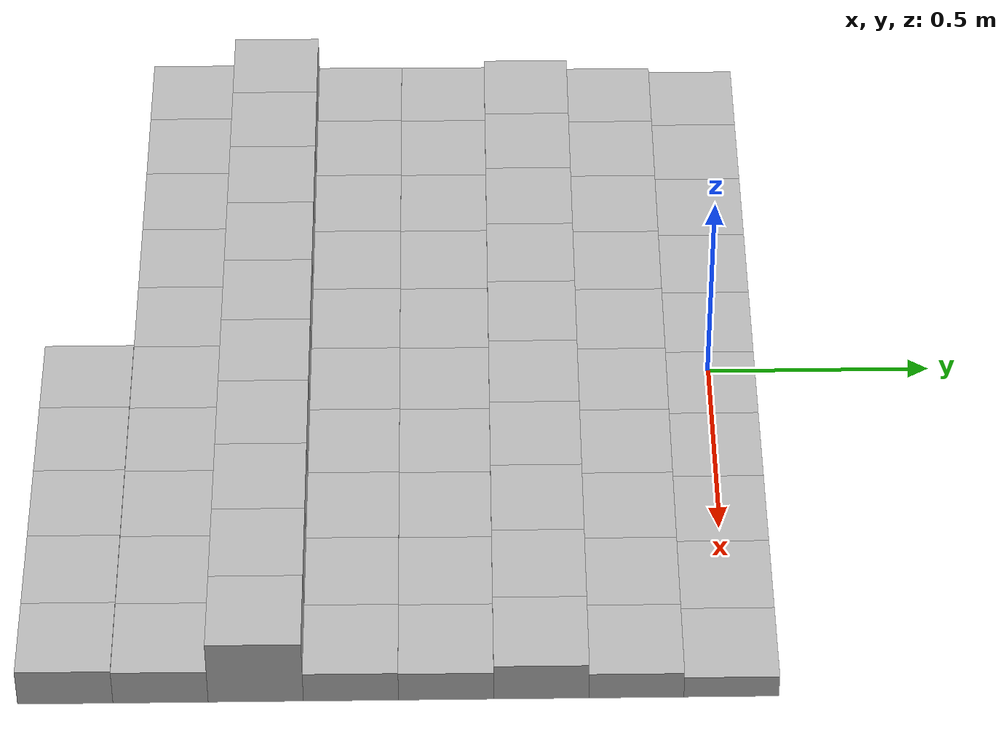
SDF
<sdf version="1.6">
 <model name="Terrain">
  <static>true</static>
  <link name="box_0_0">
   <pose>-0.9 0.0 0.0298454392285 0 0 0</pose>
   <inertial>
    <mass>1.0</mass>
    <inertia><ixx>0.0</ixx><ixy>0.0</ixy><ixz>0.0</ixz><iyy>0.0</iyy><iyz>0.0</iyz><izz>0.0</izz></inertia>
   </inertial>
   <collision name="collision"><geometry><box><size>0.2 0.2 0.0596908784569</size></box></geometry></collision>
   <visual name="visual"><geometry><box><size>0.2 0.2 0.0596908784569</size></box></geometry></visual>
  </link>
  <link name="box_0_1">
   <pose>-0.7 0.0 0.0298454392285 0 0 0</pose>
   <inertial>
    <mass>1.0</mass>
    <inertia><ixx>0.0</ixx><ixy>0.0</ixy><ixz>0.0</ixz><iyy>0.0</iyy><iyz>0.0</iyz><izz>0.0</izz></inertia>
   </inertial>
   <collision name="collision"><geometry><box><size>0.2 0.2 0.0596908784569</size></box></geometry></collision>
   <visual name="visual"><geometry><box><size>0.2 0.2 0.0596908784569</size></box></geometry></visual>
  </link>
  <link name="box_0_2">
   <pose>-0.5 0.0 0.0298454392285 0 0 0</pose>
   <inertial>
    <mass>1.0</mass>
    <inertia><ixx>0.0</ixx><ixy>0.0</ixy><ixz>0.0</ixz><iyy>0.0</iyy><iyz>0.0</iyz><izz>0.0</izz></inertia>
   </inertial>
   <collision name="collision"><geometry><box><size>0.2 0.2 0.0596908784569</size></box></geometry></collision>
   <visual name="visual"><geometry><box><size>0.2 0.2 0.0596908784569</size></box></geometry></visual>
  </link>
  <link name="box_0_3">
   <pose>-0.3 0.0 0.0298454392285 0 0 0</pose>
   <inertial>
    <mass>1.0</mass>
    <inertia><ixx>0.0</ixx><ixy>0.0</ixy><ixz>0.0</ixz><iyy>0.0</iyy><iyz>0.0</iyz><izz>0.0</izz></inertia>
   </inertial>
   <collision name="collision"><geometry><box><size>0.2 0.2 0.0596908784569</size></box></geometry></collision>
   <visual name="visual"><geometry><box><size>0.2 0.2 0.0596908784569</size></box></geometry></visual>
  </link>
  <link name="box_0_4">
   <pose>-0.1 0.0 0.0298454392285 0 0 0</pose>
   <inertial>
    <mass>1.0</mass>
    <inertia><ixx>0.0</ixx><ixy>0.0</ixy><ixz>0.0</ixz><iyy>0.0</iyy><iyz>0.0</iyz><izz>0.0</izz></inertia>
   </inertial>
   <collision name="collision"><geometry><box><size>0.2 0.2 0.0596908784569</size></box></geometry></collision>
   <visual name="visual"><geometry><box><size>0.2 0.2 0.0596908784569</size></box></geometry></visual>
  </link>
  <link name="box_0_5">
   <pose>0.1 0.0 0.0298454392285 0 0 0</pose>
   <inertial>
    <mass>1.0</mass>
    <inertia><ixx>0.0</ixx><ixy>0.0</ixy><ixz>0.0</ixz><iyy>0.0</iyy><iyz>0.0</iyz><izz>0.0</izz></inertia>
   </inertial>
   <collision name="collision"><geometry><box><size>0.2 0.2 0.0596908784569</size></box></geometry></collision>
   <visual name="visual"><geometry><box><size>0.2 0.2 0.0596908784569</size></box></geometry></visual>
  </link>
  <link name="box_0_6">
   <pose>0.3 0.0 0.0298454392285 0 0 0</pose>
   <inertial>
    <mass>1.0</mass>
    <inertia><ixx>0.0</ixx><ixy>0.0</ixy><ixz>0.0</ixz><iyy>0.0</iyy><iyz>0.0</iyz><izz>0.0</izz></inertia>
   </inertial>
   <collision name="collision"><geometry><box><size>0.2 0.2 0.0596908784569</size></box></geometry></collision>
   <visual name="visual"><geometry><box><size>0.2 0.2 0.0596908784569</size></box></geometry></visual>
  </link>
  <link name="box_0_7">
   <pose>0.5 0.0 0.0298454392285 0 0 0</pose>
   <inertial>
    <mass>1.0</mass>
    <inertia><ixx>0.0</ixx><ixy>0.0</ixy><ixz>0.0</ixz><iyy>0.0</iyy><iyz>0.0</iyz><izz>0.0</izz></inertia>
   </inertial>
   <collision name="collision"><geometry><box><size>0.2 0.2 0.0596908784569</size></box></geometry></collision>
   <visual name="visual"><geometry><box><size>0.2 0.2 0.0596908784569</size></box></geometry></visual>
  </link>
  <link name="box_0_8">
   <pose>0.7 0.0 0.0298454392285 0 0 0</pose>
   <inertial>
    <mass>1.0</mass>
    <inertia><ixx>0.0</ixx><ixy>0.0</ixy><ixz>0.0</ixz><iyy>0.0</iyy><iyz>0.0</iyz><izz>0.0</izz></inertia>
   </inertial>
   <collision name="collision"><geometry><box><size>0.2 0.2 0.0596908784569</size></box></geometry></collision>
   <visual name="visual"><geometry><box><size>0.2 0.2 0.0596908784569</size></box></geometry></visual>
  </link>
  <link name="box_0_9">
   <pose>0.9 0.0 0.0298454392285 0 0 0</pose>
   <inertial>
    <mass>1.0</mass>
    <inertia><ixx>0.0</ixx><ixy>0.0</ixy><ixz>0.0</ixz><iyy>0.0</iyy><iyz>0.0</iyz><izz>0.0</izz></inertia>
   </inertial>
   <collision name="collision"><geometry><box><size>0.2 0.2 0.0596908784569</size></box></geometry></collision>
   <visual name="visual"><geometry><box><size>0.2 0.2 0.0596908784569</size></box></geometry></visual>
  </link>
  <link name="box_1_0">
   <pose>-0.9 -0.2 0.0364353297397 0 0 0</pose>
   <inertial>
    <mass>1.0</mass>
    <inertia><ixx>0.0</ixx><ixy>0.0</ixy><ixz>0.0</ixz><iyy>0.0</iyy><iyz>0.0</iyz><izz>0.0</izz></inertia>
   </inertial>
   <collision name="collision"><geometry><box><size>0.2 0.2 0.0728706594794</size></box></geometry></collision>
   <visual name="visual"><geometry><box><size>0.2 0.2 0.0728706594794</size></box></geometry></visual>
  </link>
  <link name="box_1_1">
   <pose>-0.7 -0.2 0.0364353297397 0 0 0</pose>
   <inertial>
    <mass>1.0</mass>
    <inertia><ixx>0.0</ixx><ixy>0.0</ixy><ixz>0.0</ixz><iyy>0.0</iyy><iyz>0.0</iyz><izz>0.0</izz></inertia>
   </inertial>
   <collision name="collision"><geometry><box><size>0.2 0.2 0.0728706594794</size></box></geometry></collision>
   <visual name="visual"><geometry><box><size>0.2 0.2 0.0728706594794</size></box></geometry></visual>
  </link>
  <link name="box_1_2">
   <pose>-0.5 -0.2 0.0364353297397 0 0 0</pose>
   <inertial>
    <mass>1.0</mass>
    <inertia><ixx>0.0</ixx><ixy>0.0</ixy><ixz>0.0</ixz><iyy>0.0</iyy><iyz>0.0</iyz><izz>0.0</izz></inertia>
   </inertial>
   <collision name="collision"><geometry><box><size>0.2 0.2 0.0728706594794</size></box></geometry></collision>
   <visual name="visual"><geometry><box><size>0.2 0.2 0.0728706594794</size></box></geometry></visual>
  </link>
  <link name="box_1_3">
   <pose>-0.3 -0.2 0.0364353297397 0 0 0</pose>
   <inertial>
    <mass>1.0</mass>
    <inertia><ixx>0.0</ixx><ixy>0.0</ixy><ixz>0.0</ixz><iyy>0.0</iyy><iyz>0.0</iyz><izz>0.0</izz></inertia>
   </inertial>
   <collision name="collision"><geometry><box><size>0.2 0.2 0.0728706594794</size></box></geometry></collision>
   <visual name="visual"><geometry><box><size>0.2 0.2 0.0728706594794</size></box></geometry></visual>
  </link>
  <link name="box_1_4">
   <pose>-0.1 -0.2 0.0364353297397 0 0 0</pose>
   <inertial>
    <mass>1.0</mass>
    <inertia><ixx>0.0</ixx><ixy>0.0</ixy><ixz>0.0</ixz><iyy>0.0</iyy><iyz>0.0</iyz><izz>0.0</izz></inertia>
   </inertial>
   <collision name="collision"><geometry><box><size>0.2 0.2 0.0728706594794</size></box></geometry></collision>
   <visual name="visual"><geometry><box><size>0.2 0.2 0.0728706594794</size></box></geometry></visual>
  </link>
  <link name="box_1_5">
   <pose>0.1 -0.2 0.0364353297397 0 0 0</pose>
   <inertial>
    <mass>1.0</mass>
    <inertia><ixx>0.0</ixx><ixy>0.0</ixy><ixz>0.0</ixz><iyy>0.0</iyy><iyz>0.0</iyz><izz>0.0</izz></inertia>
   </inertial>
   <collision name="collision"><geometry><box><size>0.2 0.2 0.0728706594794</size></box></geometry></collision>
   <visual name="visual"><geometry><box><size>0.2 0.2 0.0728706594794</size></box></geometry></visual>
  </link>
  <link name="box_1_6">
   <pose>0.3 -0.2 0.0364353297397 0 0 0</pose>
   <inertial>
    <mass>1.0</mass>
    <inertia><ixx>0.0</ixx><ixy>0.0</ixy><ixz>0.0</ixz><iyy>0.0</iyy><iyz>0.0</iyz><izz>0.0</izz></inertia>
   </inertial>
   <collision name="collision"><geometry><box><size>0.2 0.2 0.0728706594794</size></box></geometry></collision>
   <visual name="visual"><geometry><box><size>0.2 0.2 0.0728706594794</size></box></geometry></visual>
  </link>
  <link name="box_1_7">
   <pose>0.5 -0.2 0.0364353297397 0 0 0</pose>
   <inertial>
    <mass>1.0</mass>
    <inertia><ixx>0.0</ixx><ixy>0.0</ixy><ixz>0.0</ixz><iyy>0.0</iyy><iyz>0.0</iyz><izz>0.0</izz></inertia>
   </inertial>
   <collision name="collision"><geometry><box><size>0.2 0.2 0.0728706594794</size></box></geometry></collision>
   <visual name="visual"><geometry><box><size>0.2 0.2 0.0728706594794</size></box></geometry></visual>
  </link>
  <link name="box_1_8">
   <pose>0.7 -0.2 0.0364353297397 0 0 0</pose>
   <inertial>
    <mass>1.0</mass>
    <inertia><ixx>0.0</ixx><ixy>0.0</ixy><ixz>0.0</ixz><iyy>0.0</iyy><iyz>0.0</iyz><izz>0.0</izz></inertia>
   </inertial>
   <collision name="collision"><geometry><box><size>0.2 0.2 0.0728706594794</size></box></geometry></collision>
   <visual name="visual"><geometry><box><size>0.2 0.2 0.0728706594794</size></box></geometry></visual>
  </link>
  <link name="box_1_9">
   <pose>0.9 -0.2 0.0364353297397 0 0 0</pose>
   <inertial>
    <mass>1.0</mass>
    <inertia><ixx>0.0</ixx><ixy>0.0</ixy><ixz>0.0</ixz><iyy>0.0</iyy><iyz>0.0</iyz><izz>0.0</izz></inertia>
   </inertial>
   <collision name="collision"><geometry><box><size>0.2 0.2 0.0728706594794</size></box></geometry></collision>
   <visual name="visual"><geometry><box><size>0.2 0.2 0.0728706594794</size></box></geometry></visual>
  </link>
  <link name="box_2_0">
   <pose>-0.9 -0.4 0.0500971136277 0 0 0</pose>
   <inertial>
    <mass>1.0</mass>
    <inertia><ixx>0.0</ixx><ixy>0.0</ixy><ixz>0.0</ixz><iyy>0.0</iyy><iyz>0.0</iyz><izz>0.0</izz></inertia>
   </inertial>
   <collision name="collision"><geometry><box><size>0.2 0.2 0.100194227255</size></box></geometry></collision>
   <visual name="visual"><geometry><box><size>0.2 0.2 0.100194227255</size></box></geometry></visual>
  </link>
  <link name="box_2_1">
   <pose>-0.7 -0.4 0.0500971136277 0 0 0</pose>
   <inertial>
    <mass>1.0</mass>
    <inertia><ixx>0.0</ixx><ixy>0.0</ixy><ixz>0.0</ixz><iyy>0.0</iyy><iyz>0.0</iyz><izz>0.0</izz></inertia>
   </inertial>
   <collision name="collision"><geometry><box><size>0.2 0.2 0.100194227255</size></box></geometry></collision>
   <visual name="visual"><geometry><box><size>0.2 0.2 0.100194227255</size></box></geometry></visual>
  </link>
  <link name="box_2_2">
   <pose>-0.5 -0.4 0.0500971136277 0 0 0</pose>
   <inertial>
    <mass>1.0</mass>
    <inertia><ixx>0.0</ixx><ixy>0.0</ixy><ixz>0.0</ixz><iyy>0.0</iyy><iyz>0.0</iyz><izz>0.0</izz></inertia>
   </inertial>
   <collision name="collision"><geometry><box><size>0.2 0.2 0.100194227255</size></box></geometry></collision>
   <visual name="visual"><geometry><box><size>0.2 0.2 0.100194227255</size></box></geometry></visual>
  </link>
  <link name="box_2_3">
   <pose>-0.3 -0.4 0.0500971136277 0 0 0</pose>
   <inertial>
    <mass>1.0</mass>
    <inertia><ixx>0.0</ixx><ixy>0.0</ixy><ixz>0.0</ixz><iyy>0.0</iyy><iyz>0.0</iyz><izz>0.0</izz></inertia>
   </inertial>
   <collision name="collision"><geometry><box><size>0.2 0.2 0.100194227255</size></box></geometry></collision>
   <visual name="visual"><geometry><box><size>0.2 0.2 0.100194227255</size></box></geometry></visual>
  </link>
  <link name="box_2_4">
   <pose>-0.1 -0.4 0.0500971136277 0 0 0</pose>
   <inertial>
    <mass>1.0</mass>
    <inertia><ixx>0.0</ixx><ixy>0.0</ixy><ixz>0.0</ixz><iyy>0.0</iyy><iyz>0.0</iyz><izz>0.0</izz></inertia>
   </inertial>
   <collision name="collision"><geometry><box><size>0.2 0.2 0.100194227255</size></box></geometry></collision>
   <visual name="visual"><geometry><box><size>0.2 0.2 0.100194227255</size></box></geometry></visual>
  </link>
  <link name="box_2_5">
   <pose>0.1 -0.4 0.0500971136277 0 0 0</pose>
   <inertial>
    <mass>1.0</mass>
    <inertia><ixx>0.0</ixx><ixy>0.0</ixy><ixz>0.0</ixz><iyy>0.0</iyy><iyz>0.0</iyz><izz>0.0</izz></inertia>
   </inertial>
   <collision name="collision"><geometry><box><size>0.2 0.2 0.100194227255</size></box></geometry></collision>
   <visual name="visual"><geometry><box><size>0.2 0.2 0.100194227255</size></box></geometry></visual>
  </link>
  <link name="box_2_6">
   <pose>0.3 -0.4 0.0500971136277 0 0 0</pose>
   <inertial>
    <mass>1.0</mass>
    <inertia><ixx>0.0</ixx><ixy>0.0</ixy><ixz>0.0</ixz><iyy>0.0</iyy><iyz>0.0</iyz><izz>0.0</izz></inertia>
   </inertial>
   <collision name="collision"><geometry><box><size>0.2 0.2 0.100194227255</size></box></geometry></collision>
   <visual name="visual"><geometry><box><size>0.2 0.2 0.100194227255</size></box></geometry></visual>
  </link>
  <link name="box_2_7">
   <pose>0.5 -0.4 0.0500971136277 0 0 0</pose>
   <inertial>
    <mass>1.0</mass>
    <inertia><ixx>0.0</ixx><ixy>0.0</ixy><ixz>0.0</ixz><iyy>0.0</iyy><iyz>0.0</iyz><izz>0.0</izz></inertia>
   </inertial>
   <collision name="collision"><geometry><box><size>0.2 0.2 0.100194227255</size></box></geometry></collision>
   <visual name="visual"><geometry><box><size>0.2 0.2 0.100194227255</size></box></geometry></visual>
  </link>
  <link name="box_2_8">
   <pose>0.7 -0.4 0.0500971136277 0 0 0</pose>
   <inertial>
    <mass>1.0</mass>
    <inertia><ixx>0.0</ixx><ixy>0.0</ixy><ixz>0.0</ixz><iyy>0.0</iyy><iyz>0.0</iyz><izz>0.0</izz></inertia>
   </inertial>
   <collision name="collision"><geometry><box><size>0.2 0.2 0.100194227255</size></box></geometry></collision>
   <visual name="visual"><geometry><box><size>0.2 0.2 0.100194227255</size></box></geometry></visual>
  </link>
  <link name="box_2_9">
   <pose>0.9 -0.4 0.0500971136277 0 0 0</pose>
   <inertial>
    <mass>1.0</mass>
    <inertia><ixx>0.0</ixx><ixy>0.0</ixy><ixz>0.0</ixz><iyy>0.0</iyy><iyz>0.0</iyz><izz>0.0</izz></inertia>
   </inertial>
   <collision name="collision"><geometry><box><size>0.2 0.2 0.100194227255</size></box></geometry></collision>
   <visual name="visual"><geometry><box><size>0.2 0.2 0.100194227255</size></box></geometry></visual>
  </link>
  <link name="box_3_0">
   <pose>-0.9 -0.6 0.0400606316075 0 0 0</pose>
   <inertial>
    <mass>1.0</mass>
    <inertia><ixx>0.0</ixx><ixy>0.0</ixy><ixz>0.0</ixz><iyy>0.0</iyy><iyz>0.0</iyz><izz>0.0</izz></inertia>
   </inertial>
   <collision name="collision"><geometry><box><size>0.2 0.2 0.080121263215</size></box></geometry></collision>
   <visual name="visual"><geometry><box><size>0.2 0.2 0.080121263215</size></box></geometry></visual>
  </link>
  <link name="box_3_1">
   <pose>-0.7 -0.6 0.0400606316075 0 0 0</pose>
   <inertial>
    <mass>1.0</mass>
    <inertia><ixx>0.0</ixx><ixy>0.0</ixy><ixz>0.0</ixz><iyy>0.0</iyy><iyz>0.0</iyz><izz>0.0</izz></inertia>
   </inertial>
   <collision name="collision"><geometry><box><size>0.2 0.2 0.080121263215</size></box></geometry></collision>
   <visual name="visual"><geometry><box><size>0.2 0.2 0.080121263215</size></box></geometry></visual>
  </link>
  <link name="box_3_2">
   <pose>-0.5 -0.6 0.0400606316075 0 0 0</pose>
   <inertial>
    <mass>1.0</mass>
    <inertia><ixx>0.0</ixx><ixy>0.0</ixy><ixz>0.0</ixz><iyy>0.0</iyy><iyz>0.0</iyz><izz>0.0</izz></inertia>
   </inertial>
   <collision name="collision"><geometry><box><size>0.2 0.2 0.080121263215</size></box></geometry></collision>
   <visual name="visual"><geometry><box><size>0.2 0.2 0.080121263215</size></box></geometry></visual>
  </link>
  <link name="box_3_3">
   <pose>-0.3 -0.6 0.0400606316075 0 0 0</pose>
   <inertial>
    <mass>1.0</mass>
    <inertia><ixx>0.0</ixx><ixy>0.0</ixy><ixz>0.0</ixz><iyy>0.0</iyy><iyz>0.0</iyz><izz>0.0</izz></inertia>
   </inertial>
   <collision name="collision"><geometry><box><size>0.2 0.2 0.080121263215</size></box></geometry></collision>
   <visual name="visual"><geometry><box><size>0.2 0.2 0.080121263215</size></box></geometry></visual>
  </link>
  <link name="box_3_4">
   <pose>-0.1 -0.6 0.0400606316075 0 0 0</pose>
   <inertial>
    <mass>1.0</mass>
    <inertia><ixx>0.0</ixx><ixy>0.0</ixy><ixz>0.0</ixz><iyy>0.0</iyy><iyz>0.0</iyz><izz>0.0</izz></inertia>
   </inertial>
   <collision name="collision"><geometry><box><size>0.2 0.2 0.080121263215</size></box></geometry></collision>
   <visual name="visual"><geometry><box><size>0.2 0.2 0.080121263215</size></box></geometry></visual>
  </link>
  <link name="box_3_5">
   <pose>0.1 -0.6 0.0400606316075 0 0 0</pose>
   <inertial>
    <mass>1.0</mass>
    <inertia><ixx>0.0</ixx><ixy>0.0</ixy><ixz>0.0</ixz><iyy>0.0</iyy><iyz>0.0</iyz><izz>0.0</izz></inertia>
   </inertial>
   <collision name="collision"><geometry><box><size>0.2 0.2 0.080121263215</size></box></geometry></collision>
   <visual name="visual"><geometry><box><size>0.2 0.2 0.080121263215</size></box></geometry></visual>
  </link>
  <link name="box_3_6">
   <pose>0.3 -0.6 0.0400606316075 0 0 0</pose>
   <inertial>
    <mass>1.0</mass>
    <inertia><ixx>0.0</ixx><ixy>0.0</ixy><ixz>0.0</ixz><iyy>0.0</iyy><iyz>0.0</iyz><izz>0.0</izz></inertia>
   </inertial>
   <collision name="collision"><geometry><box><size>0.2 0.2 0.080121263215</size></box></geometry></collision>
   <visual name="visual"><geometry><box><size>0.2 0.2 0.080121263215</size></box></geometry></visual>
  </link>
  <link name="box_3_7">
   <pose>0.5 -0.6 0.0400606316075 0 0 0</pose>
   <inertial>
    <mass>1.0</mass>
    <inertia><ixx>0.0</ixx><ixy>0.0</ixy><ixz>0.0</ixz><iyy>0.0</iyy><iyz>0.0</iyz><izz>0.0</izz></inertia>
   </inertial>
   <collision name="collision"><geometry><box><size>0.2 0.2 0.080121263215</size></box></geometry></collision>
   <visual name="visual"><geometry><box><size>0.2 0.2 0.080121263215</size></box></geometry></visual>
  </link>
  <link name="box_3_8">
   <pose>0.7 -0.6 0.0400606316075 0 0 0</pose>
   <inertial>
    <mass>1.0</mass>
    <inertia><ixx>0.0</ixx><ixy>0.0</ixy><ixz>0.0</ixz><iyy>0.0</iyy><iyz>0.0</iyz><izz>0.0</izz></inertia>
   </inertial>
   <collision name="collision"><geometry><box><size>0.2 0.2 0.080121263215</size></box></geometry></collision>
   <visual name="visual"><geometry><box><size>0.2 0.2 0.080121263215</size></box></geometry></visual>
  </link>
  <link name="box_3_9">
   <pose>0.9 -0.6 0.0400606316075 0 0 0</pose>
   <inertial>
    <mass>1.0</mass>
    <inertia><ixx>0.0</ixx><ixy>0.0</ixy><ixz>0.0</ixz><iyy>0.0</iyy><iyz>0.0</iyz><izz>0.0</izz></inertia>
   </inertial>
   <collision name="collision"><geometry><box><size>0.2 0.2 0.080121263215</size></box></geometry></collision>
   <visual name="visual"><geometry><box><size>0.2 0.2 0.080121263215</size></box></geometry></visual>
  </link>
  <link name="box_4_0">
   <pose>-0.9 -0.8 0.0411032899613 0 0 0</pose>
   <inertial>
    <mass>1.0</mass>
    <inertia><ixx>0.0</ixx><ixy>0.0</ixy><ixz>0.0</ixz><iyy>0.0</iyy><iyz>0.0</iyz><izz>0.0</izz></inertia>
   </inertial>
   <collision name="collision"><geometry><box><size>0.2 0.2 0.0822065799227</size></box></geometry></collision>
   <visual name="visual"><geometry><box><size>0.2 0.2 0.0822065799227</size></box></geometry></visual>
  </link>
  <link name="box_4_1">
   <pose>-0.7 -0.8 0.0411032899613 0 0 0</pose>
   <inertial>
    <mass>1.0</mass>
    <inertia><ixx>0.0</ixx><ixy>0.0</ixy><ixz>0.0</ixz><iyy>0.0</iyy><iyz>0.0</iyz><izz>0.0</izz></inertia>
   </inertial>
   <collision name="collision"><geometry><box><size>0.2 0.2 0.0822065799227</size></box></geometry></collision>
   <visual name="visual"><geometry><box><size>0.2 0.2 0.0822065799227</size></box></geometry></visual>
  </link>
  <link name="box_4_2">
   <pose>-0.5 -0.8 0.0411032899613 0 0 0</pose>
   <inertial>
    <mass>1.0</mass>
    <inertia><ixx>0.0</ixx><ixy>0.0</ixy><ixz>0.0</ixz><iyy>0.0</iyy><iyz>0.0</iyz><izz>0.0</izz></inertia>
   </inertial>
   <collision name="collision"><geometry><box><size>0.2 0.2 0.0822065799227</size></box></geometry></collision>
   <visual name="visual"><geometry><box><size>0.2 0.2 0.0822065799227</size></box></geometry></visual>
  </link>
  <link name="box_4_3">
   <pose>-0.3 -0.8 0.0411032899613 0 0 0</pose>
   <inertial>
    <mass>1.0</mass>
    <inertia><ixx>0.0</ixx><ixy>0.0</ixy><ixz>0.0</ixz><iyy>0.0</iyy><iyz>0.0</iyz><izz>0.0</izz></inertia>
   </inertial>
   <collision name="collision"><geometry><box><size>0.2 0.2 0.0822065799227</size></box></geometry></collision>
   <visual name="visual"><geometry><box><size>0.2 0.2 0.0822065799227</size></box></geometry></visual>
  </link>
  <link name="box_4_4">
   <pose>-0.1 -0.8 0.0411032899613 0 0 0</pose>
   <inertial>
    <mass>1.0</mass>
    <inertia><ixx>0.0</ixx><ixy>0.0</ixy><ixz>0.0</ixz><iyy>0.0</iyy><iyz>0.0</iyz><izz>0.0</izz></inertia>
   </inertial>
   <collision name="collision"><geometry><box><size>0.2 0.2 0.0822065799227</size></box></geometry></collision>
   <visual name="visual"><geometry><box><size>0.2 0.2 0.0822065799227</size></box></geometry></visual>
  </link>
  <link name="box_4_5">
   <pose>0.1 -0.8 0.0411032899613 0 0 0</pose>
   <inertial>
    <mass>1.0</mass>
    <inertia><ixx>0.0</ixx><ixy>0.0</ixy><ixz>0.0</ixz><iyy>0.0</iyy><iyz>0.0</iyz><izz>0.0</izz></inertia>
   </inertial>
   <collision name="collision"><geometry><box><size>0.2 0.2 0.0822065799227</size></box></geometry></collision>
   <visual name="visual"><geometry><box><size>0.2 0.2 0.0822065799227</size></box></geometry></visual>
  </link>
  <link name="box_4_6">
   <pose>0.3 -0.8 0.0411032899613 0 0 0</pose>
   <inertial>
    <mass>1.0</mass>
    <inertia><ixx>0.0</ixx><ixy>0.0</ixy><ixz>0.0</ixz><iyy>0.0</iyy><iyz>0.0</iyz><izz>0.0</izz></inertia>
   </inertial>
   <collision name="collision"><geometry><box><size>0.2 0.2 0.0822065799227</size></box></geometry></collision>
   <visual name="visual"><geometry><box><size>0.2 0.2 0.0822065799227</size></box></geometry></visual>
  </link>
  <link name="box_4_7">
   <pose>0.5 -0.8 0.0411032899613 0 0 0</pose>
   <inertial>
    <mass>1.0</mass>
    <inertia><ixx>0.0</ixx><ixy>0.0</ixy><ixz>0.0</ixz><iyy>0.0</iyy><iyz>0.0</iyz><izz>0.0</izz></inertia>
   </inertial>
   <collision name="collision"><geometry><box><size>0.2 0.2 0.0822065799227</size></box></geometry></collision>
   <visual name="visual"><geometry><box><size>0.2 0.2 0.0822065799227</size></box></geometry></visual>
  </link>
  <link name="box_4_8">
   <pose>0.7 -0.8 0.0411032899613 0 0 0</pose>
   <inertial>
    <mass>1.0</mass>
    <inertia><ixx>0.0</ixx><ixy>0.0</ixy><ixz>0.0</ixz><iyy>0.0</iyy><iyz>0.0</iyz><izz>0.0</izz></inertia>
   </inertial>
   <collision name="collision"><geometry><box><size>0.2 0.2 0.0822065799227</size></box></geometry></collision>
   <visual name="visual"><geometry><box><size>0.2 0.2 0.0822065799227</size></box></geometry></visual>
  </link>
  <link name="box_4_9">
   <pose>0.9 -0.8 0.0411032899613 0 0 0</pose>
   <inertial>
    <mass>1.0</mass>
    <inertia><ixx>0.0</ixx><ixy>0.0</ixy><ixz>0.0</ixz><iyy>0.0</iyy><iyz>0.0</iyz><izz>0.0</izz></inertia>
   </inertial>
   <collision name="collision"><geometry><box><size>0.2 0.2 0.0822065799227</size></box></geometry></collision>
   <visual name="visual"><geometry><box><size>0.2 0.2 0.0822065799227</size></box></geometry></visual>
  </link>
  <link name="box_5_0">
   <pose>-0.9 -1.0 0.0866602983141 0 0 0</pose>
   <inertial>
    <mass>1.0</mass>
    <inertia><ixx>0.0</ixx><ixy>0.0</ixy><ixz>0.0</ixz><iyy>0.0</iyy><iyz>0.0</iyz><izz>0.0</izz></inertia>
   </inertial>
   <collision name="collision"><geometry><box><size>0.2 0.2 0.173320596628</size></box></geometry></collision>
   <visual name="visual"><geometry><box><size>0.2 0.2 0.173320596628</size></box></geometry></visual>
  </link>
  <link name="box_5_1">
   <pose>-0.7 -1.0 0.0866602983141 0 0 0</pose>
   <inertial>
    <mass>1.0</mass>
    <inertia><ixx>0.0</ixx><ixy>0.0</ixy><ixz>0.0</ixz><iyy>0.0</iyy><iyz>0.0</iyz><izz>0.0</izz></inertia>
   </inertial>
   <collision name="collision"><geometry><box><size>0.2 0.2 0.173320596628</size></box></geometry></collision>
   <visual name="visual"><geometry><box><size>0.2 0.2 0.173320596628</size></box></geometry></visual>
  </link>
  <link name="box_5_2">
   <pose>-0.5 -1.0 0.0866602983141 0 0 0</pose>
   <inertial>
    <mass>1.0</mass>
    <inertia><ixx>0.0</ixx><ixy>0.0</ixy><ixz>0.0</ixz><iyy>0.0</iyy><iyz>0.0</iyz><izz>0.0</izz></inertia>
   </inertial>
   <collision name="collision"><geometry><box><size>0.2 0.2 0.173320596628</size></box></geometry></collision>
   <visual name="visual"><geometry><box><size>0.2 0.2 0.173320596628</size></box></geometry></visual>
  </link>
  <link name="box_5_3">
   <pose>-0.3 -1.0 0.0866602983141 0 0 0</pose>
   <inertial>
    <mass>1.0</mass>
    <inertia><ixx>0.0</ixx><ixy>0.0</ixy><ixz>0.0</ixz><iyy>0.0</iyy><iyz>0.0</iyz><izz>0.0</izz></inertia>
   </inertial>
   <collision name="collision"><geometry><box><size>0.2 0.2 0.173320596628</size></box></geometry></collision>
   <visual name="visual"><geometry><box><size>0.2 0.2 0.173320596628</size></box></geometry></visual>
  </link>
  <link name="box_5_4">
   <pose>-0.1 -1.0 0.0866602983141 0 0 0</pose>
   <inertial>
    <mass>1.0</mass>
    <inertia><ixx>0.0</ixx><ixy>0.0</ixy><ixz>0.0</ixz><iyy>0.0</iyy><iyz>0.0</iyz><izz>0.0</izz></inertia>
   </inertial>
   <collision name="collision"><geometry><box><size>0.2 0.2 0.173320596628</size></box></geometry></collision>
   <visual name="visual"><geometry><box><size>0.2 0.2 0.173320596628</size></box></geometry></visual>
  </link>
  <link name="box_5_5">
   <pose>0.1 -1.0 0.0866602983141 0 0 0</pose>
   <inertial>
    <mass>1.0</mass>
    <inertia><ixx>0.0</ixx><ixy>0.0</ixy><ixz>0.0</ixz><iyy>0.0</iyy><iyz>0.0</iyz><izz>0.0</izz></inertia>
   </inertial>
   <collision name="collision"><geometry><box><size>0.2 0.2 0.173320596628</size></box></geometry></collision>
   <visual name="visual"><geometry><box><size>0.2 0.2 0.173320596628</size></box></geometry></visual>
  </link>
  <link name="box_5_6">
   <pose>0.3 -1.0 0.0866602983141 0 0 0</pose>
   <inertial>
    <mass>1.0</mass>
    <inertia><ixx>0.0</ixx><ixy>0.0</ixy><ixz>0.0</ixz><iyy>0.0</iyy><iyz>0.0</iyz><izz>0.0</izz></inertia>
   </inertial>
   <collision name="collision"><geometry><box><size>0.2 0.2 0.173320596628</size></box></geometry></collision>
   <visual name="visual"><geometry><box><size>0.2 0.2 0.173320596628</size></box></geometry></visual>
  </link>
  <link name="box_5_7">
   <pose>0.5 -1.0 0.0866602983141 0 0 0</pose>
   <inertial>
    <mass>1.0</mass>
    <inertia><ixx>0.0</ixx><ixy>0.0</ixy><ixz>0.0</ixz><iyy>0.0</iyy><iyz>0.0</iyz><izz>0.0</izz></inertia>
   </inertial>
   <collision name="collision"><geometry><box><size>0.2 0.2 0.173320596628</size></box></geometry></collision>
   <visual name="visual"><geometry><box><size>0.2 0.2 0.173320596628</size></box></geometry></visual>
  </link>
  <link name="box_5_8">
   <pose>0.7 -1.0 0.0866602983141 0 0 0</pose>
   <inertial>
    <mass>1.0</mass>
    <inertia><ixx>0.0</ixx><ixy>0.0</ixy><ixz>0.0</ixz><iyy>0.0</iyy><iyz>0.0</iyz><izz>0.0</izz></inertia>
   </inertial>
   <collision name="collision"><geometry><box><size>0.2 0.2 0.173320596628</size></box></geometry></collision>
   <visual name="visual"><geometry><box><size>0.2 0.2 0.173320596628</size></box></geometry></visual>
  </link>
  <link name="box_5_9">
   <pose>0.9 -1.0 0.0866602983141 0 0 0</pose>
   <inertial>
    <mass>1.0</mass>
    <inertia><ixx>0.0</ixx><ixy>0.0</ixy><ixz>0.0</ixz><iyy>0.0</iyy><iyz>0.0</iyz><izz>0.0</izz></inertia>
   </inertial>
   <collision name="collision"><geometry><box><size>0.2 0.2 0.173320596628</size></box></geometry></collision>
   <visual name="visual"><geometry><box><size>0.2 0.2 0.173320596628</size></box></geometry></visual>
  </link>
  <link name="box_6_0">
   <pose>-0.9 -1.2 0.0462161115059 0 0 0</pose>
   <inertial>
    <mass>1.0</mass>
    <inertia><ixx>0.0</ixx><ixy>0.0</ixy><ixz>0.0</ixz><iyy>0.0</iyy><iyz>0.0</iyz><izz>0.0</izz></inertia>
   </inertial>
   <collision name="collision"><geometry><box><size>0.2 0.2 0.0924322230118</size></box></geometry></collision>
   <visual name="visual"><geometry><box><size>0.2 0.2 0.0924322230118</size></box></geometry></visual>
  </link>
  <link name="box_6_1">
   <pose>-0.7 -1.2 0.0462161115059 0 0 0</pose>
   <inertial>
    <mass>1.0</mass>
    <inertia><ixx>0.0</ixx><ixy>0.0</ixy><ixz>0.0</ixz><iyy>0.0</iyy><iyz>0.0</iyz><izz>0.0</izz></inertia>
   </inertial>
   <collision name="collision"><geometry><box><size>0.2 0.2 0.0924322230118</size></box></geometry></collision>
   <visual name="visual"><geometry><box><size>0.2 0.2 0.0924322230118</size></box></geometry></visual>
  </link>
  <link name="box_6_2">
   <pose>-0.5 -1.2 0.0462161115059 0 0 0</pose>
   <inertial>
    <mass>1.0</mass>
    <inertia><ixx>0.0</ixx><ixy>0.0</ixy><ixz>0.0</ixz><iyy>0.0</iyy><iyz>0.0</iyz><izz>0.0</izz></inertia>
   </inertial>
   <collision name="collision"><geometry><box><size>0.2 0.2 0.0924322230118</size></box></geometry></collision>
   <visual name="visual"><geometry><box><size>0.2 0.2 0.0924322230118</size></box></geometry></visual>
  </link>
  <link name="box_6_3">
   <pose>-0.3 -1.2 0.0462161115059 0 0 0</pose>
   <inertial>
    <mass>1.0</mass>
    <inertia><ixx>0.0</ixx><ixy>0.0</ixy><ixz>0.0</ixz><iyy>0.0</iyy><iyz>0.0</iyz><izz>0.0</izz></inertia>
   </inertial>
   <collision name="collision"><geometry><box><size>0.2 0.2 0.0924322230118</size></box></geometry></collision>
   <visual name="visual"><geometry><box><size>0.2 0.2 0.0924322230118</size></box></geometry></visual>
  </link>
  <link name="box_6_4">
   <pose>-0.1 -1.2 0.0462161115059 0 0 0</pose>
   <inertial>
    <mass>1.0</mass>
    <inertia><ixx>0.0</ixx><ixy>0.0</ixy><ixz>0.0</ixz><iyy>0.0</iyy><iyz>0.0</iyz><izz>0.0</izz></inertia>
   </inertial>
   <collision name="collision"><geometry><box><size>0.2 0.2 0.0924322230118</size></box></geometry></collision>
   <visual name="visual"><geometry><box><size>0.2 0.2 0.0924322230118</size></box></geometry></visual>
  </link>
  <link name="box_6_5">
   <pose>0.1 -1.2 0.0462161115059 0 0 0</pose>
   <inertial>
    <mass>1.0</mass>
    <inertia><ixx>0.0</ixx><ixy>0.0</ixy><ixz>0.0</ixz><iyy>0.0</iyy><iyz>0.0</iyz><izz>0.0</izz></inertia>
   </inertial>
   <collision name="collision"><geometry><box><size>0.2 0.2 0.0924322230118</size></box></geometry></collision>
   <visual name="visual"><geometry><box><size>0.2 0.2 0.0924322230118</size></box></geometry></visual>
  </link>
  <link name="box_6_6">
   <pose>0.3 -1.2 0.0462161115059 0 0 0</pose>
   <inertial>
    <mass>1.0</mass>
    <inertia><ixx>0.0</ixx><ixy>0.0</ixy><ixz>0.0</ixz><iyy>0.0</iyy><iyz>0.0</iyz><izz>0.0</izz></inertia>
   </inertial>
   <collision name="collision"><geometry><box><size>0.2 0.2 0.0924322230118</size></box></geometry></collision>
   <visual name="visual"><geometry><box><size>0.2 0.2 0.0924322230118</size></box></geometry></visual>
  </link>
  <link name="box_6_7">
   <pose>0.5 -1.2 0.0462161115059 0 0 0</pose>
   <inertial>
    <mass>1.0</mass>
    <inertia><ixx>0.0</ixx><ixy>0.0</ixy><ixz>0.0</ixz><iyy>0.0</iyy><iyz>0.0</iyz><izz>0.0</izz></inertia>
   </inertial>
   <collision name="collision"><geometry><box><size>0.2 0.2 0.0924322230118</size></box></geometry></collision>
   <visual name="visual"><geometry><box><size>0.2 0.2 0.0924322230118</size></box></geometry></visual>
  </link>
  <link name="box_6_8">
   <pose>0.7 -1.2 0.0462161115059 0 0 0</pose>
   <inertial>
    <mass>1.0</mass>
    <inertia><ixx>0.0</ixx><ixy>0.0</ixy><ixz>0.0</ixz><iyy>0.0</iyy><iyz>0.0</iyz><izz>0.0</izz></inertia>
   </inertial>
   <collision name="collision"><geometry><box><size>0.2 0.2 0.0924322230118</size></box></geometry></collision>
   <visual name="visual"><geometry><box><size>0.2 0.2 0.0924322230118</size></box></geometry></visual>
  </link>
  <link name="box_6_9">
   <pose>0.9 -1.2 0.0462161115059 0 0 0</pose>
   <inertial>
    <mass>1.0</mass>
    <inertia><ixx>0.0</ixx><ixy>0.0</ixy><ixz>0.0</ixz><iyy>0.0</iyy><iyz>0.0</iyz><izz>0.0</izz></inertia>
   </inertial>
   <collision name="collision"><geometry><box><size>0.2 0.2 0.0924322230118</size></box></geometry></collision>
   <visual name="visual"><geometry><box><size>0.2 0.2 0.0924322230118</size></box></geometry></visual>
  </link>
  <link name="box_7_5">
   <pose>0.1 -1.4 0.0484710517982 0 0 0</pose>
   <inertial>
    <mass>1.0</mass>
    <inertia><ixx>0.0</ixx><ixy>0.0</ixy><ixz>0.0</ixz><iyy>0.0</iyy><iyz>0.0</iyz><izz>0.0</izz></inertia>
   </inertial>
   <collision name="collision"><geometry><box><size>0.2 0.2 0.0969421035965</size></box></geometry></collision>
   <visual name="visual"><geometry><box><size>0.2 0.2 0.0969421035965</size></box></geometry></visual>
  </link>
  <link name="box_7_6">
   <pose>0.3 -1.4 0.0484710517982 0 0 0</pose>
   <inertial>
    <mass>1.0</mass>
    <inertia><ixx>0.0</ixx><ixy>0.0</ixy><ixz>0.0</ixz><iyy>0.0</iyy><iyz>0.0</iyz><izz>0.0</izz></inertia>
   </inertial>
   <collision name="collision"><geometry><box><size>0.2 0.2 0.0969421035965</size></box></geometry></collision>
   <visual name="visual"><geometry><box><size>0.2 0.2 0.0969421035965</size></box></geometry></visual>
  </link>
  <link name="box_7_7">
   <pose>0.5 -1.4 0.0484710517982 0 0 0</pose>
   <inertial>
    <mass>1.0</mass>
    <inertia><ixx>0.0</ixx><ixy>0.0</ixy><ixz>0.0</ixz><iyy>0.0</iyy><iyz>0.0</iyz><izz>0.0</izz></inertia>
   </inertial>
   <collision name="collision"><geometry><box><size>0.2 0.2 0.0969421035965</size></box></geometry></collision>
   <visual name="visual"><geometry><box><size>0.2 0.2 0.0969421035965</size></box></geometry></visual>
  </link>
  <link name="box_7_8">
   <pose>0.7 -1.4 0.0484710517982 0 0 0</pose>
   <inertial>
    <mass>1.0</mass>
    <inertia><ixx>0.0</ixx><ixy>0.0</ixy><ixz>0.0</ixz><iyy>0.0</iyy><iyz>0.0</iyz><izz>0.0</izz></inertia>
   </inertial>
   <collision name="collision"><geometry><box><size>0.2 0.2 0.0969421035965</size></box></geometry></collision>
   <visual name="visual"><geometry><box><size>0.2 0.2 0.0969421035965</size></box></geometry></visual>
  </link>
  <link name="box_7_9">
   <pose>0.9 -1.4 0.0484710517982 0 0 0</pose>
   <inertial>
    <mass>1.0</mass>
    <inertia><ixx>0.0</ixx><ixy>0.0</ixy><ixz>0.0</ixz><iyy>0.0</iyy><iyz>0.0</iyz><izz>0.0</izz></inertia>
   </inertial>
   <collision name="collision"><geometry><box><size>0.2 0.2 0.0969421035965</size></box></geometry></collision>
   <visual name="visual"><geometry><box><size>0.2 0.2 0.0969421035965</size></box></geometry></visual>
  </link>
 </model>
</sdf>
